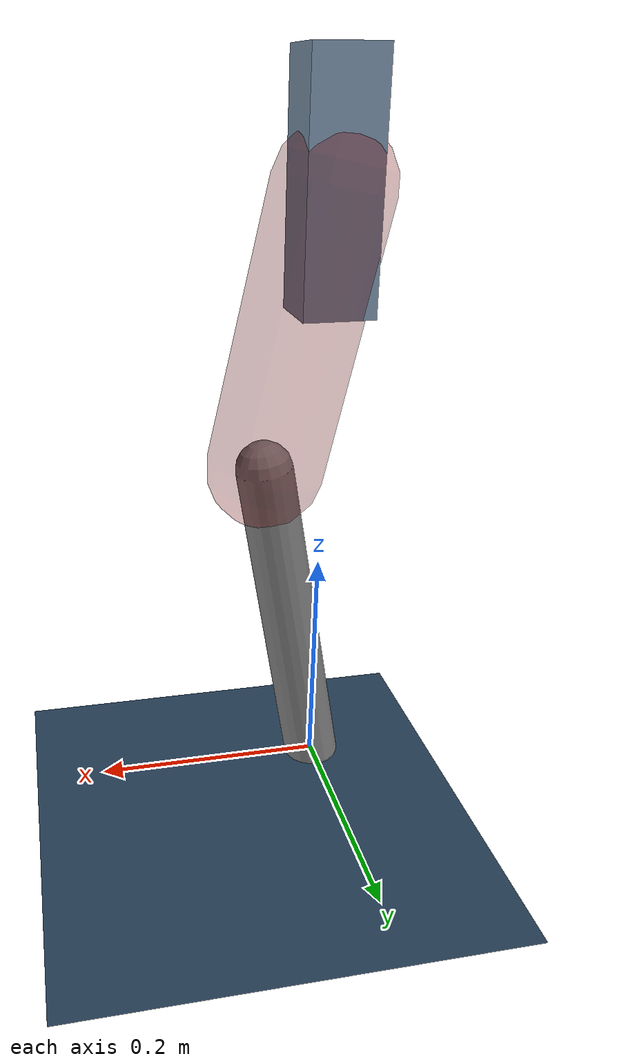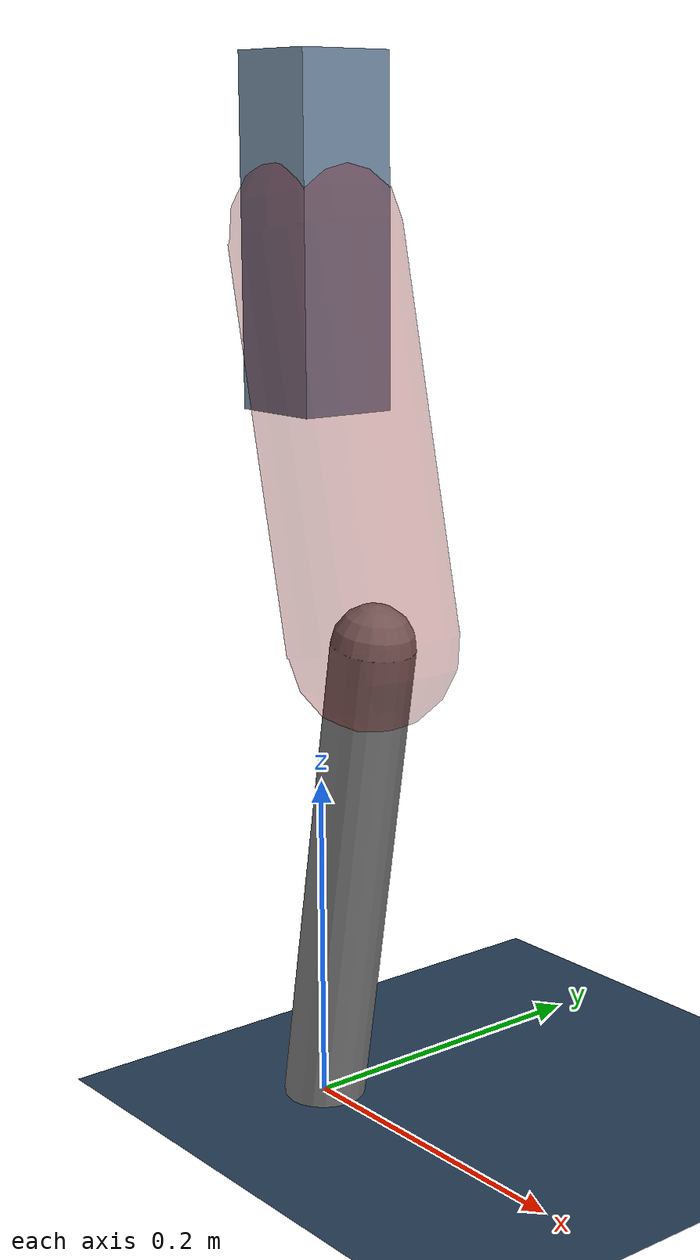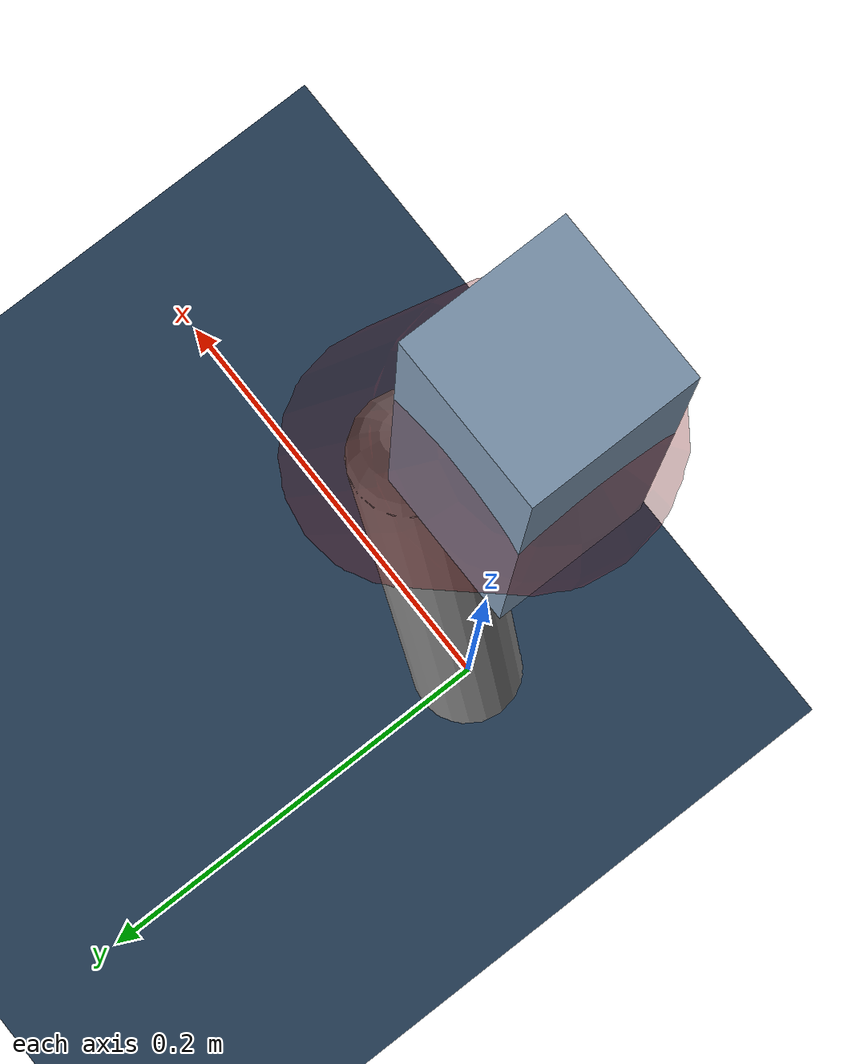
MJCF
<mujoco model="Hopper2D">
	<compiler inertiafromgeom="true" angle="radian" />
	<option timestep="0.001" integrator="implicit" cone="elliptic" solver="Newton" tolerance="1e-10" />

	<default>
		<geom contype="1" conaffinity="1" condim="3" friction="2 0.005 0.0001" solref="0.005 1" />
		<joint limited="true" damping="0.1" />
	</default>

	<asset>
		<texture name="skybox" type="skybox" builtin="gradient" rgb1=".4 .6 .8" rgb2="0 0 0" width="800" height="800" />
		<texture name="grid" type="2d" builtin="checker" rgb1=".1 .2 .3" rgb2=".2 .3 .4" width="300" height="300" mark="edge" markrgb=".2 .3 .4" />
		<material name="ground" texture="grid" texrepeat="1 1" texuniform="true" reflectance="0.1" />
		<material name="leg" rgba="0.5 0.6 0.7 1" />
	</asset>

	<worldbody>

		<geom name="floor" type="plane" size="5 5 0.25" material="ground" />

		<light directional="false" diffuse="0.8 0.8 0.8" specular="0.3 0.3 0.3" pos="0 0 2" dir="0 0 -1" />
		<light mode="targetbodycom" target="base" directional="false" diffuse="0.8 0.8 0.8" specular="0.3 0.3 0.3" pos="0 0 2" dir="0 0 -1" />

		<camera name="fixed" pos="0 -2 1" xyaxes="1 0 0 0 0 1" />
		<camera name="tracking" mode="trackcom" pos="0 -3 1" />

		<body name="root" pos="0 0 0.5239109858610833">
			<joint name="slide_x" type="slide" axis="1 0 0" range="-100 100" />
			<joint name="slide_z" type="slide" axis="0 0 1" range="0 10" />

			<body name="base" pos="0 0 0">
				<geom name="torso" type="box" size="0.03 0.03 0.1" mass="2.5069999999999997" material="leg" />

				<body name="link1" pos="0 0 0" euler="0 1.3530933352451382 0">
					<joint type="hinge" axis="0 -1 0" pos="0 0 0" name="hinge1" limited="true" range="-3.14 3.14" stiffness="0" damping="0.1" />
					<geom name="thigh" type="capsule" fromto="0 0 0 0.23647657207320766 0 0" size="0.05" rgba="0.5 0 0 0.3" mass="0.82153908739034" />

					<body name="link2" pos="0.23647657207320766 0 0" euler="0 0.39028011711942284 0">
						<joint type="hinge" axis="0 -1 0" pos="0 0 0" name="hinge2" limited="true" range="-3.14 3.14" stiffness="0" damping="0.1" />
						<geom name="shank" type="capsule" fromto="0 0 0 0.2974344137878757 0 0" size="0.025" mass="0.4813475310303006" />

					</body>
				</body>
			</body>
		</body>
	</worldbody>

	<actuator>
		<motor name="torque1" joint="hinge1" ctrlrange="-47.041406156302806 47.041406156302806" ctrllimited="true" gear="1" />
		<motor name="torque2" joint="hinge2" ctrlrange="-91.79312118079505 91.79312118079505" ctrllimited="true" gear="1" />
	</actuator>
</mujoco>
